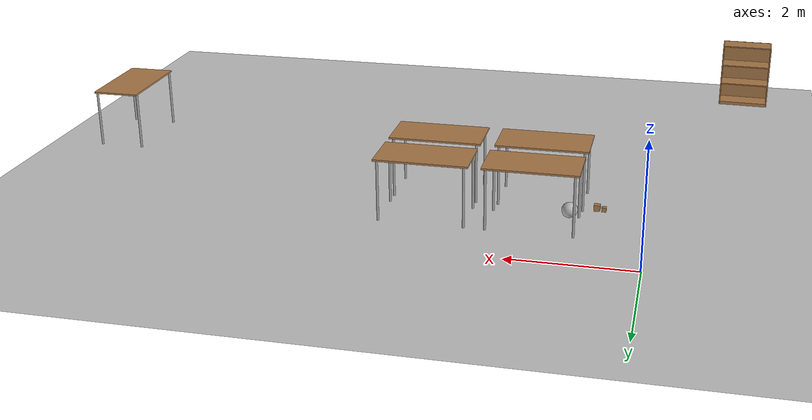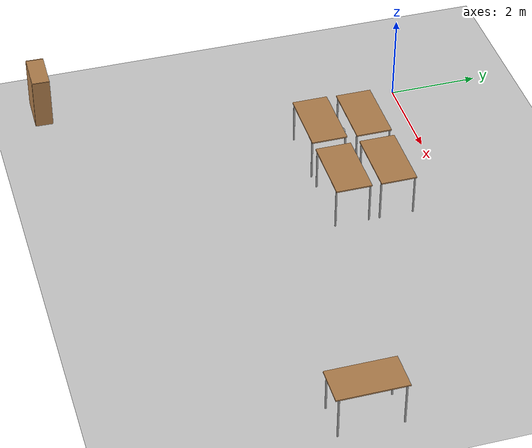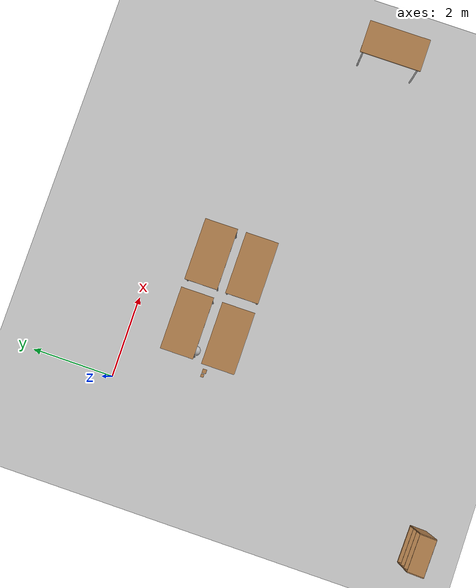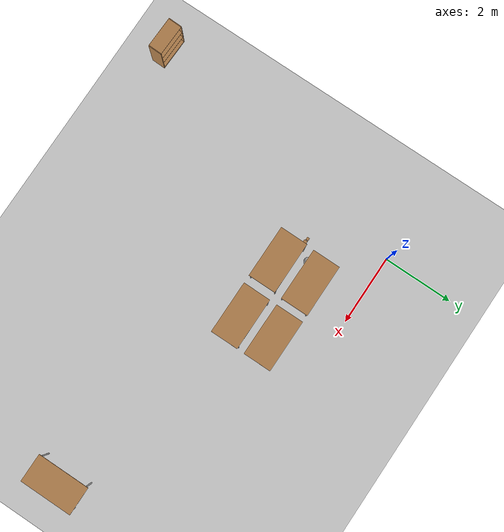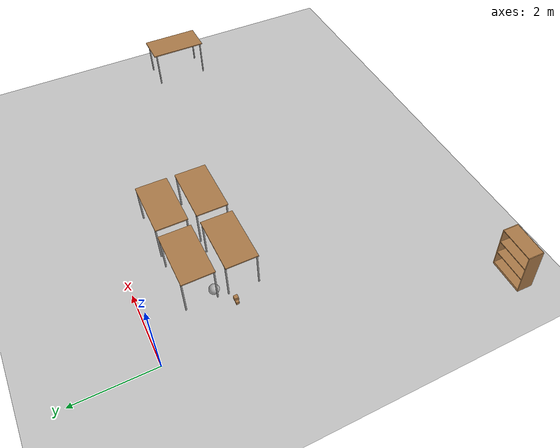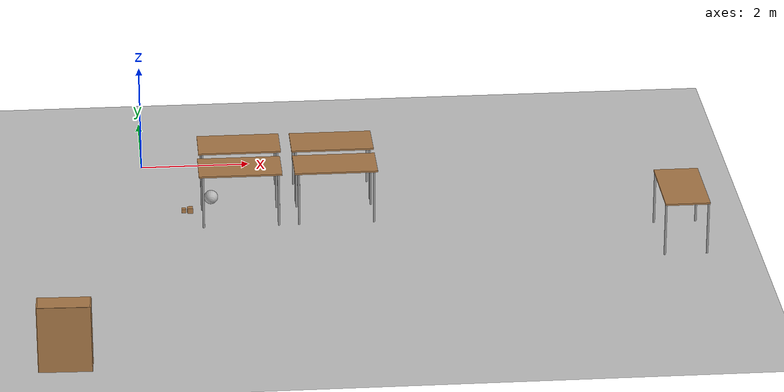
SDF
<sdf version="1.6">
 <world name="default">
  <model name="ground_plane">
   <static>1</static>
   <link name="link">
    <collision name="collision">
     <geometry><plane><normal>0 0 1</normal><size>100 100</size></plane></geometry>
     <surface>
      <contact><collide_bitmask>65535</collide_bitmask></contact>
      <friction><ode><mu>100</mu><mu2>50</mu2></ode></friction>
     </surface>
    </collision>
    <visual name="visual">
     <cast_shadows>0</cast_shadows>
     <geometry><plane><normal>0 0 1</normal><size>100 100</size></plane></geometry>
     <material>
      <script><uri>file://media/materials/scripts/gazebo.material</uri><name>Gazebo/Grey</name></script>
     </material>
    </visual>
   </link>
  </model>
  <model name="table_3">
   <static>1</static>
   <link name="link">
    <collision name="surface">
     <pose>0 0 1 0 -0 0</pose>
     <geometry><box><size>1.5 0.8 0.03</size></box></geometry>
     <surface><friction><ode><mu>0.6</mu><mu2>0.6</mu2></ode></friction></surface>
    </collision>
    <visual name="visual1">
     <pose>0 0 1 0 -0 0</pose>
     <geometry><box><size>1.5 0.8 0.03</size></box></geometry>
     <material>
      <script><uri>file://media/materials/scripts/gazebo.material</uri><name>Gazebo/Wood</name></script>
     </material>
    </visual>
    <collision name="front_left_leg">
     <pose>0.68 0.38 0.5 0 -0 0</pose>
     <geometry><cylinder><radius>0.02</radius><length>1</length></cylinder></geometry>
    </collision>
    <visual name="front_left_leg">
     <pose>0.68 0.38 0.5 0 -0 0</pose>
     <geometry><cylinder><radius>0.02</radius><length>1</length></cylinder></geometry>
     <material>
      <script><uri>file://media/materials/scripts/gazebo.material</uri><name>Gazebo/Grey</name></script>
     </material>
    </visual>
    <collision name="front_right_leg">
     <pose>0.68 -0.38 0.5 0 -0 0</pose>
     <geometry><cylinder><radius>0.02</radius><length>1</length></cylinder></geometry>
    </collision>
    <visual name="front_right_leg">
     <pose>0.68 -0.38 0.5 0 -0 0</pose>
     <geometry><cylinder><radius>0.02</radius><length>1</length></cylinder></geometry>
     <material>
      <script><uri>file://media/materials/scripts/gazebo.material</uri><name>Gazebo/Grey</name></script>
     </material>
    </visual>
    <collision name="back_right_leg">
     <pose>-0.68 -0.38 0.5 0 -0 0</pose>
     <geometry><cylinder><radius>0.02</radius><length>1</length></cylinder></geometry>
    </collision>
    <visual name="back_right_leg">
     <pose>-0.68 -0.38 0.5 0 -0 0</pose>
     <geometry><cylinder><radius>0.02</radius><length>1</length></cylinder></geometry>
     <material>
      <script><uri>file://media/materials/scripts/gazebo.material</uri><name>Gazebo/Grey</name></script>
     </material>
    </visual>
    <collision name="back_left_leg">
     <pose>-0.68 0.38 0.5 0 -0 0</pose>
     <geometry><cylinder><radius>0.02</radius><length>1</length></cylinder></geometry>
    </collision>
    <visual name="back_left_leg">
     <pose>-0.68 0.38 0.5 0 -0 0</pose>
     <geometry><cylinder><radius>0.02</radius><length>1</length></cylinder></geometry>
     <material>
      <script><uri>file://media/materials/scripts/gazebo.material</uri><name>Gazebo/Grey</name></script>
     </material>
    </visual>
   </link>
   <pose>1.75922 -1.33689 0 0 -0 0</pose>
  </model>
  <model name="table_4">
   <static>1</static>
   <link name="link">
    <collision name="surface">
     <pose>0 0 1 0 -0 0</pose>
     <geometry><box><size>1.5 0.8 0.03</size></box></geometry>
     <surface><friction><ode><mu>0.6</mu><mu2>0.6</mu2></ode></friction></surface>
    </collision>
    <visual name="visual1">
     <pose>0 0 1 0 -0 0</pose>
     <geometry><box><size>1.5 0.8 0.03</size></box></geometry>
     <material>
      <script><uri>file://media/materials/scripts/gazebo.material</uri><name>Gazebo/Wood</name></script>
     </material>
    </visual>
    <collision name="front_left_leg">
     <pose>0.68 0.38 0.5 0 -0 0</pose>
     <geometry><cylinder><radius>0.02</radius><length>1</length></cylinder></geometry>
    </collision>
    <visual name="front_left_leg">
     <pose>0.68 0.38 0.5 0 -0 0</pose>
     <geometry><cylinder><radius>0.02</radius><length>1</length></cylinder></geometry>
     <material>
      <script><uri>file://media/materials/scripts/gazebo.material</uri><name>Gazebo/Grey</name></script>
     </material>
    </visual>
    <collision name="front_right_leg">
     <pose>0.68 -0.38 0.5 0 -0 0</pose>
     <geometry><cylinder><radius>0.02</radius><length>1</length></cylinder></geometry>
    </collision>
    <visual name="front_right_leg">
     <pose>0.68 -0.38 0.5 0 -0 0</pose>
     <geometry><cylinder><radius>0.02</radius><length>1</length></cylinder></geometry>
     <material>
      <script><uri>file://media/materials/scripts/gazebo.material</uri><name>Gazebo/Grey</name></script>
     </material>
    </visual>
    <collision name="back_right_leg">
     <pose>-0.68 -0.38 0.5 0 -0 0</pose>
     <geometry><cylinder><radius>0.02</radius><length>1</length></cylinder></geometry>
    </collision>
    <visual name="back_right_leg">
     <pose>-0.68 -0.38 0.5 0 -0 0</pose>
     <geometry><cylinder><radius>0.02</radius><length>1</length></cylinder></geometry>
     <material>
      <script><uri>file://media/materials/scripts/gazebo.material</uri><name>Gazebo/Grey</name></script>
     </material>
    </visual>
    <collision name="back_left_leg">
     <pose>-0.68 0.38 0.5 0 -0 0</pose>
     <geometry><cylinder><radius>0.02</radius><length>1</length></cylinder></geometry>
    </collision>
    <visual name="back_left_leg">
     <pose>-0.68 0.38 0.5 0 -0 0</pose>
     <geometry><cylinder><radius>0.02</radius><length>1</length></cylinder></geometry>
     <material>
      <script><uri>file://media/materials/scripts/gazebo.material</uri><name>Gazebo/Grey</name></script>
     </material>
    </visual>
   </link>
   <pose>3.45333 -2.3478 0 0 -0 0</pose>
  </model>
  <model name="table_5">
   <static>1</static>
   <link name="link">
    <collision name="surface">
     <pose>0 0 1 0 -0 0</pose>
     <geometry><box><size>1.5 0.8 0.03</size></box></geometry>
     <surface><friction><ode><mu>0.6</mu><mu2>0.6</mu2></ode></friction></surface>
    </collision>
    <visual name="visual1">
     <pose>0 0 1 0 -0 0</pose>
     <geometry><box><size>1.5 0.8 0.03</size></box></geometry>
     <material>
      <script><uri>file://media/materials/scripts/gazebo.material</uri><name>Gazebo/Wood</name></script>
     </material>
    </visual>
    <collision name="front_left_leg">
     <pose>0.68 0.38 0.5 0 -0 0</pose>
     <geometry><cylinder><radius>0.02</radius><length>1</length></cylinder></geometry>
    </collision>
    <visual name="front_left_leg">
     <pose>0.68 0.38 0.5 0 -0 0</pose>
     <geometry><cylinder><radius>0.02</radius><length>1</length></cylinder></geometry>
     <material>
      <script><uri>file://media/materials/scripts/gazebo.material</uri><name>Gazebo/Grey</name></script>
     </material>
    </visual>
    <collision name="front_right_leg">
     <pose>0.68 -0.38 0.5 0 -0 0</pose>
     <geometry><cylinder><radius>0.02</radius><length>1</length></cylinder></geometry>
    </collision>
    <visual name="front_right_leg">
     <pose>0.68 -0.38 0.5 0 -0 0</pose>
     <geometry><cylinder><radius>0.02</radius><length>1</length></cylinder></geometry>
     <material>
      <script><uri>file://media/materials/scripts/gazebo.material</uri><name>Gazebo/Grey</name></script>
     </material>
    </visual>
    <collision name="back_right_leg">
     <pose>-0.68 -0.38 0.5 0 -0 0</pose>
     <geometry><cylinder><radius>0.02</radius><length>1</length></cylinder></geometry>
    </collision>
    <visual name="back_right_leg">
     <pose>-0.68 -0.38 0.5 0 -0 0</pose>
     <geometry><cylinder><radius>0.02</radius><length>1</length></cylinder></geometry>
     <material>
      <script><uri>file://media/materials/scripts/gazebo.material</uri><name>Gazebo/Grey</name></script>
     </material>
    </visual>
    <collision name="back_left_leg">
     <pose>-0.68 0.38 0.5 0 -0 0</pose>
     <geometry><cylinder><radius>0.02</radius><length>1</length></cylinder></geometry>
    </collision>
    <visual name="back_left_leg">
     <pose>-0.68 0.38 0.5 0 -0 0</pose>
     <geometry><cylinder><radius>0.02</radius><length>1</length></cylinder></geometry>
     <material>
      <script><uri>file://media/materials/scripts/gazebo.material</uri><name>Gazebo/Grey</name></script>
     </material>
    </visual>
   </link>
   <pose>1.72828 -2.35191 0 0 -0 0</pose>
  </model>
  <model name="table_6">
   <static>1</static>
   <link name="link">
    <collision name="surface">
     <pose>0 0 1 0 -0 0</pose>
     <geometry><box><size>1.5 0.8 0.03</size></box></geometry>
     <surface><friction><ode><mu>0.6</mu><mu2>0.6</mu2></ode></friction></surface>
    </collision>
    <visual name="visual1">
     <pose>0 0 1 0 -0 0</pose>
     <geometry><box><size>1.5 0.8 0.03</size></box></geometry>
     <material>
      <script><uri>file://media/materials/scripts/gazebo.material</uri><name>Gazebo/Wood</name></script>
     </material>
    </visual>
    <collision name="front_left_leg">
     <pose>0.68 0.38 0.5 0 -0 0</pose>
     <geometry><cylinder><radius>0.02</radius><length>1</length></cylinder></geometry>
    </collision>
    <visual name="front_left_leg">
     <pose>0.68 0.38 0.5 0 -0 0</pose>
     <geometry><cylinder><radius>0.02</radius><length>1</length></cylinder></geometry>
     <material>
      <script><uri>file://media/materials/scripts/gazebo.material</uri><name>Gazebo/Grey</name></script>
     </material>
    </visual>
    <collision name="front_right_leg">
     <pose>0.68 -0.38 0.5 0 -0 0</pose>
     <geometry><cylinder><radius>0.02</radius><length>1</length></cylinder></geometry>
    </collision>
    <visual name="front_right_leg">
     <pose>0.68 -0.38 0.5 0 -0 0</pose>
     <geometry><cylinder><radius>0.02</radius><length>1</length></cylinder></geometry>
     <material>
      <script><uri>file://media/materials/scripts/gazebo.material</uri><name>Gazebo/Grey</name></script>
     </material>
    </visual>
    <collision name="back_right_leg">
     <pose>-0.68 -0.38 0.5 0 -0 0</pose>
     <geometry><cylinder><radius>0.02</radius><length>1</length></cylinder></geometry>
    </collision>
    <visual name="back_right_leg">
     <pose>-0.68 -0.38 0.5 0 -0 0</pose>
     <geometry><cylinder><radius>0.02</radius><length>1</length></cylinder></geometry>
     <material>
      <script><uri>file://media/materials/scripts/gazebo.material</uri><name>Gazebo/Grey</name></script>
     </material>
    </visual>
    <collision name="back_left_leg">
     <pose>-0.68 0.38 0.5 0 -0 0</pose>
     <geometry><cylinder><radius>0.02</radius><length>1</length></cylinder></geometry>
    </collision>
    <visual name="back_left_leg">
     <pose>-0.68 0.38 0.5 0 -0 0</pose>
     <geometry><cylinder><radius>0.02</radius><length>1</length></cylinder></geometry>
     <material>
      <script><uri>file://media/materials/scripts/gazebo.material</uri><name>Gazebo/Grey</name></script>
     </material>
    </visual>
   </link>
   <pose>3.45573 -1.34424 0 0 -0 0</pose>
  </model>
  <model name="table_11">
   <static>1</static>
   <link name="link">
    <collision name="surface">
     <pose>0 0 1 0 -0 0</pose>
     <geometry><box><size>1.5 0.8 0.03</size></box></geometry>
     <surface><friction><ode><mu>0.6</mu><mu2>0.6</mu2></ode></friction></surface>
    </collision>
    <visual name="visual1">
     <pose>0 0 1 0 -0 0</pose>
     <geometry><box><size>1.5 0.8 0.03</size></box></geometry>
     <material>
      <script><uri>file://media/materials/scripts/gazebo.material</uri><name>Gazebo/Wood</name></script>
     </material>
    </visual>
    <collision name="front_left_leg">
     <pose>0.68 0.38 0.5 0 -0 0</pose>
     <geometry><cylinder><radius>0.02</radius><length>1</length></cylinder></geometry>
    </collision>
    <visual name="front_left_leg">
     <pose>0.68 0.38 0.5 0 -0 0</pose>
     <geometry><cylinder><radius>0.02</radius><length>1</length></cylinder></geometry>
     <material>
      <script><uri>file://media/materials/scripts/gazebo.material</uri><name>Gazebo/Grey</name></script>
     </material>
    </visual>
    <collision name="front_right_leg">
     <pose>0.68 -0.38 0.5 0 -0 0</pose>
     <geometry><cylinder><radius>0.02</radius><length>1</length></cylinder></geometry>
    </collision>
    <visual name="front_right_leg">
     <pose>0.68 -0.38 0.5 0 -0 0</pose>
     <geometry><cylinder><radius>0.02</radius><length>1</length></cylinder></geometry>
     <material>
      <script><uri>file://media/materials/scripts/gazebo.material</uri><name>Gazebo/Grey</name></script>
     </material>
    </visual>
    <collision name="back_right_leg">
     <pose>-0.68 -0.38 0.5 0 -0 0</pose>
     <geometry><cylinder><radius>0.02</radius><length>1</length></cylinder></geometry>
    </collision>
    <visual name="back_right_leg">
     <pose>-0.68 -0.38 0.5 0 -0 0</pose>
     <geometry><cylinder><radius>0.02</radius><length>1</length></cylinder></geometry>
     <material>
      <script><uri>file://media/materials/scripts/gazebo.material</uri><name>Gazebo/Grey</name></script>
     </material>
    </visual>
    <collision name="back_left_leg">
     <pose>-0.68 0.38 0.5 0 -0 0</pose>
     <geometry><cylinder><radius>0.02</radius><length>1</length></cylinder></geometry>
    </collision>
    <visual name="back_left_leg">
     <pose>-0.68 0.38 0.5 0 -0 0</pose>
     <geometry><cylinder><radius>0.02</radius><length>1</length></cylinder></geometry>
     <material>
      <script><uri>file://media/materials/scripts/gazebo.material</uri><name>Gazebo/Grey</name></script>
     </material>
    </visual>
   </link>
   <pose>9.55904 -3.8559 0 0 0 -1.57014</pose>
  </model>
  <model name="bookshelf">
   <static>1</static>
   <link name="link">
    <inertial><mass>1</mass></inertial>
    <collision name="back">
     <pose>0 0.005 0.6 0 -0 0</pose>
     <geometry><box><size>0.9 0.01 1.2</size></box></geometry>
    </collision>
    <visual name="visual1">
     <pose>0 0.005 0.6 0 -0 0</pose>
     <geometry><box><size>0.9 0.01 1.2</size></box></geometry>
     <material>
      <script><uri>file://media/materials/scripts/gazebo.material</uri><name>Gazebo/Wood</name></script>
     </material>
    </visual>
    <collision name="left_side">
     <pose>0.45 -0.195 0.6 0 -0 0</pose>
     <geometry><box><size>0.02 0.4 1.2</size></box></geometry>
    </collision>
    <visual name="visual2">
     <pose>0.45 -0.195 0.6 0 -0 0</pose>
     <geometry><box><size>0.02 0.4 1.2</size></box></geometry>
     <material>
      <script><uri>file://media/materials/scripts/gazebo.material</uri><name>Gazebo/Wood</name></script>
     </material>
    </visual>
    <collision name="right_side">
     <pose>-0.45 -0.195 0.6 0 -0 0</pose>
     <geometry><box><size>0.02 0.4 1.2</size></box></geometry>
    </collision>
    <visual name="visual3">
     <pose>-0.45 -0.195 0.6 0 -0 0</pose>
     <geometry><box><size>0.02 0.4 1.2</size></box></geometry>
     <material>
      <script><uri>file://media/materials/scripts/gazebo.material</uri><name>Gazebo/Wood</name></script>
     </material>
    </visual>
    <collision name="bottom">
     <pose>0 -0.195 0.03 0 -0 0</pose>
     <geometry><box><size>0.88 0.4 0.06</size></box></geometry>
    </collision>
    <visual name="visual4">
     <pose>0 -0.195 0.03 0 -0 0</pose>
     <geometry><box><size>0.88 0.4 0.06</size></box></geometry>
     <material>
      <script><uri>file://media/materials/scripts/gazebo.material</uri><name>Gazebo/Wood</name></script>
     </material>
    </visual>
    <collision name="top">
     <pose>0 -0.195 1.19 0 -0 0</pose>
     <geometry><box><size>0.88 0.4 0.02</size></box></geometry>
    </collision>
    <visual name="visual5">
     <pose>0 -0.195 1.19 0 -0 0</pose>
     <geometry><box><size>0.88 0.4 0.02</size></box></geometry>
     <material>
      <script><uri>file://media/materials/scripts/gazebo.material</uri><name>Gazebo/Wood</name></script>
     </material>
    </visual>
    <collision name="low_shelf">
     <pose>0 -0.195 0.43 0 -0 0</pose>
     <geometry><box><size>0.88 0.4 0.02</size></box></geometry>
    </collision>
    <visual name="visual6">
     <pose>0 -0.195 0.43 0 -0 0</pose>
     <geometry><box><size>0.88 0.4 0.02</size></box></geometry>
     <material>
      <script><uri>file://media/materials/scripts/gazebo.material</uri><name>Gazebo/Wood</name></script>
     </material>
    </visual>
    <collision name="high_shelf">
     <pose>0 -0.195 0.8 0 -0 0</pose>
     <geometry><box><size>0.88 0.4 0.02</size></box></geometry>
    </collision>
    <visual name="visual7">
     <pose>0 -0.195 0.8 0 -0 0</pose>
     <geometry><box><size>0.88 0.4 0.02</size></box></geometry>
     <material>
      <script><uri>file://media/materials/scripts/gazebo.material</uri><name>Gazebo/Wood</name></script>
     </material>
    </visual>
   </link>
   <pose>-1.50191 -8.25029 0 0 -0 3.11086</pose>
  </model>
  <model name="wood_cube_10cm">
   <link name="link">
    <pose>0 0 0.05 0 -0 0</pose>
    <inertial>
     <mass>0.5167</mass>
     <inertia>
      <ixx>0.000861167</ixx>
      <ixy>0</ixy>
      <ixz>0</ixz>
      <iyy>0.000861167</iyy>
      <iyz>0</iyz>
      <izz>0.000861167</izz>
     </inertia>
    </inertial>
    <collision name="collision">
     <geometry><box><size>0.1 0.1 0.1</size></box></geometry>
     <surface>
      <contact>
       <poissons_ratio>0.347</poissons_ratio>
       <elastic_modulus>8.8e+09</elastic_modulus>
       <ode><kp>100000</kp><kd>100</kd><max_vel>100</max_vel><min_depth>0.001</min_depth></ode>
      </contact>
      <friction>
       <torsional>
        <coefficient>1</coefficient>
        <use_patch_radius>0</use_patch_radius>
        <surface_radius>0.01</surface_radius>
       </torsional>
      </friction>
     </surface>
    </collision>
    <visual name="visual">
     <geometry><box><size>0.1 0.1 0.1</size></box></geometry>
     <material>
      <script><uri>file://media/materials/scripts/gazebo.material</uri><name>Gazebo/Wood</name></script>
     </material>
    </visual>
   </link>
   <pose>0.827016 -2.05958 -0.001013 0 0 -1.7e-05</pose>
  </model>
  <model name="wood_cube_7_5cm">
   <link name="link">
    <pose>0 0 0.0375 0 -0 0</pose>
    <inertial>
     <mass>0.2249</mass>
     <inertia>
      <ixx>0.000210844</ixx>
      <ixy>0</ixy>
      <ixz>0</ixz>
      <iyy>0.000210844</iyy>
      <iyz>0</iyz>
      <izz>0.000210844</izz>
     </inertia>
    </inertial>
    <collision name="collision">
     <geometry><box><size>0.075 0.075 0.075</size></box></geometry>
     <surface>
      <contact>
       <poissons_ratio>0.347</poissons_ratio>
       <elastic_modulus>8.8e+09</elastic_modulus>
       <ode><kp>100000</kp><kd>100</kd><max_vel>100</max_vel><min_depth>0.001</min_depth></ode>
      </contact>
      <friction>
       <torsional>
        <coefficient>1</coefficient>
        <use_patch_radius>0</use_patch_radius>
        <surface_radius>0.01</surface_radius>
       </torsional>
      </friction>
     </surface>
    </collision>
    <visual name="visual">
     <geometry><box><size>0.075 0.075 0.075</size></box></geometry>
     <material>
      <script><uri>file://media/materials/scripts/gazebo.material</uri><name>Gazebo/Wood</name></script>
     </material>
    </visual>
   </link>
   <pose>0.713817 -2.04369 -0.001005 0 -0 0</pose>
  </model>
  <model name="frc2016_ball">
   <pose>1.22446 -1.69444 0.12675 1.23782 0.926993 2.90894</pose>
   <link name="link">
    <inertial>
     <mass>0.213</mass>
     <inertia>
      <ixx>0.00322667</ixx>
      <ixy>0</ixy>
      <ixz>0</ixz>
      <iyy>0.00322667</iyy>
      <iyz>0</iyz>
      <izz>0.00322667</izz>
     </inertia>
    </inertial>
    <visual name="visual"><geometry><sphere><radius>0.127</radius></sphere></geometry></visual>
    <collision name="collision">
     <geometry><sphere><radius>0.127</radius></sphere></geometry>
     <surface>
      <bounce><restitution_coefficient>0.15937</restitution_coefficient><threshold>0</threshold></bounce>
      <contact><ode><max_vel>100</max_vel><min_depth>0.001</min_depth></ode></contact>
     </surface>
    </collision>
   </link>
  </model>
 </world>
</sdf>
